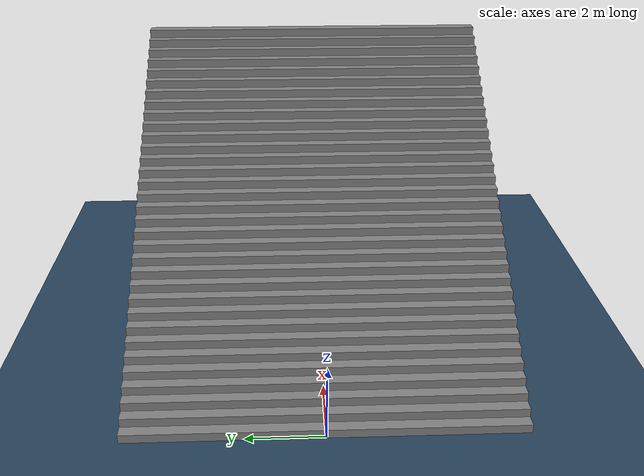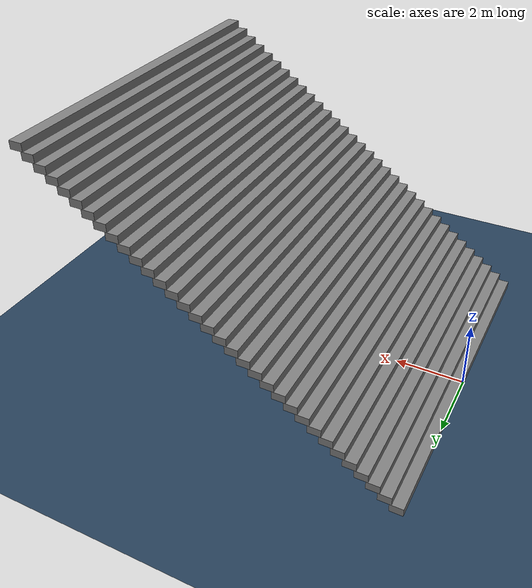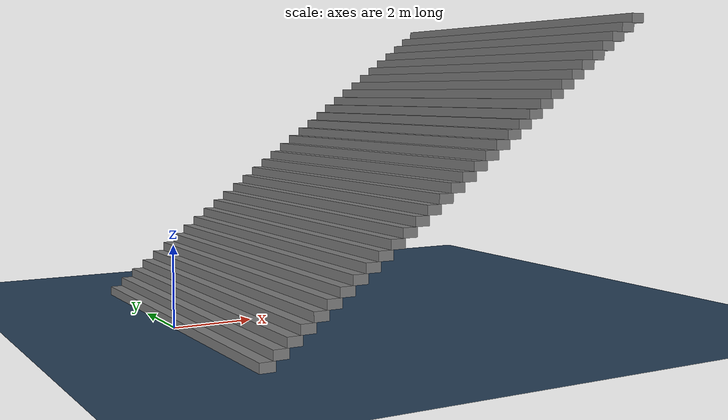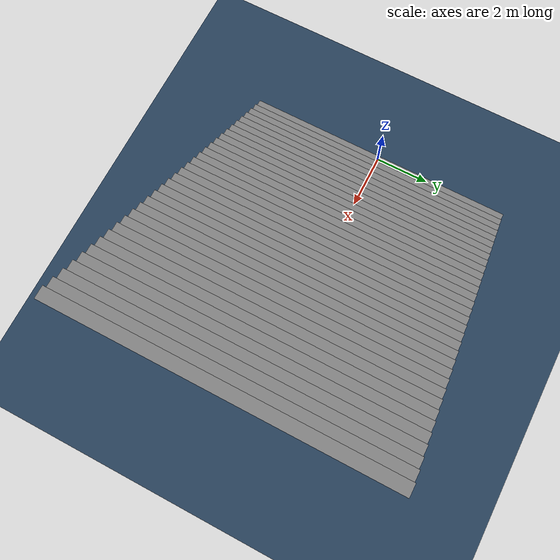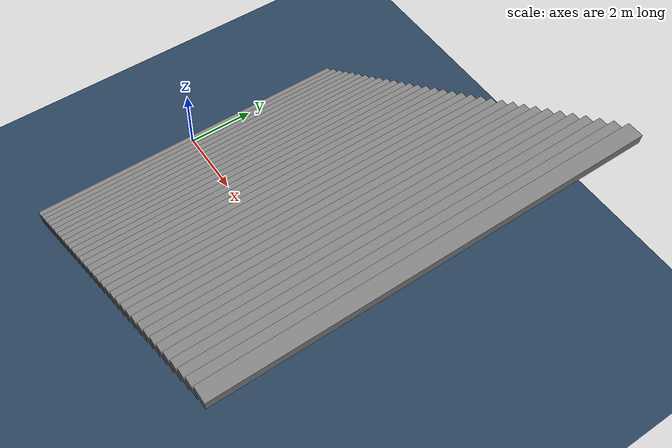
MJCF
<mujoco model="stairs_up_10">
  <!-- Terrain Type: stairs_up, Level: 10, Stairs step height: 0.2300 -->
  <statistic center="0 0 0.1" extent="0.8" />
  <visual>
    <headlight diffuse="0.6 0.6 0.6" ambient="0.3 0.3 0.3" specular="0 0 0" />
    <rgba haze="0.15 0.25 0.35 1" />
    <global azimuth="-130" elevation="-20" />
  </visual>
  <asset>
    <texture type="skybox" builtin="gradient" rgb1="0.3 0.5 0.7" rgb2="0 0 0" width="512" height="3072" />
    <texture type="2d" name="groundplane" builtin="checker" mark="edge" rgb1="0.2 0.3 0.4" rgb2="0.1 0.2 0.3" markrgb="0.8 0.8 0.8" width="300" height="300" />
    <material name="groundplane" texture="groundplane" texuniform="true" texrepeat="5 5" reflectance="0.0" />
  </asset>
  <worldbody>
    <light pos="0 0 1.5" dir="0 0 -1" directional="true" />
    <geom name="floor" size="0 0 0.05" type="plane" material="groundplane" />
    <geom pos="0.155 0.0 0.115" type="box" size="0.186 5.0 0.115" quat="1.0 0.0 0.0 0.0" />
    <geom pos="0.46499999999999997 0.0 0.34500000000000003" type="box" size="0.186 5.0 0.115" quat="1.0 0.0 0.0 0.0" />
    <geom pos="0.7749999999999999 0.0 0.5750000000000001" type="box" size="0.186 5.0 0.115" quat="1.0 0.0 0.0 0.0" />
    <geom pos="1.085 0.0 0.805" type="box" size="0.186 5.0 0.115" quat="1.0 0.0 0.0 0.0" />
    <geom pos="1.395 0.0 1.0350000000000001" type="box" size="0.186 5.0 0.115" quat="1.0 0.0 0.0 0.0" />
    <geom pos="1.705 0.0 1.2650000000000001" type="box" size="0.186 5.0 0.115" quat="1.0 0.0 0.0 0.0" />
    <geom pos="2.015 0.0 1.495" type="box" size="0.186 5.0 0.115" quat="1.0 0.0 0.0 0.0" />
    <geom pos="2.325 0.0 1.725" type="box" size="0.186 5.0 0.115" quat="1.0 0.0 0.0 0.0" />
    <geom pos="2.6350000000000002 0.0 1.955" type="box" size="0.186 5.0 0.115" quat="1.0 0.0 0.0 0.0" />
    <geom pos="2.9450000000000003 0.0 2.185" type="box" size="0.186 5.0 0.115" quat="1.0 0.0 0.0 0.0" />
    <geom pos="3.2550000000000003 0.0 2.415" type="box" size="0.186 5.0 0.115" quat="1.0 0.0 0.0 0.0" />
    <geom pos="3.5650000000000004 0.0 2.645" type="box" size="0.186 5.0 0.115" quat="1.0 0.0 0.0 0.0" />
    <geom pos="3.8750000000000004 0.0 2.875" type="box" size="0.186 5.0 0.115" quat="1.0 0.0 0.0 0.0" />
    <geom pos="4.1850000000000005 0.0 3.105" type="box" size="0.186 5.0 0.115" quat="1.0 0.0 0.0 0.0" />
    <geom pos="4.495 0.0 3.335" type="box" size="0.186 5.0 0.115" quat="1.0 0.0 0.0 0.0" />
    <geom pos="4.805 0.0 3.565" type="box" size="0.186 5.0 0.115" quat="1.0 0.0 0.0 0.0" />
    <geom pos="5.114999999999999 0.0 3.795" type="box" size="0.186 5.0 0.115" quat="1.0 0.0 0.0 0.0" />
    <geom pos="5.424999999999999 0.0 4.025" type="box" size="0.186 5.0 0.115" quat="1.0 0.0 0.0 0.0" />
    <geom pos="5.7349999999999985 0.0 4.255000000000001" type="box" size="0.186 5.0 0.115" quat="1.0 0.0 0.0 0.0" />
    <geom pos="6.044999999999998 0.0 4.485000000000001" type="box" size="0.186 5.0 0.115" quat="1.0 0.0 0.0 0.0" />
    <geom pos="6.354999999999998 0.0 4.715000000000002" type="box" size="0.186 5.0 0.115" quat="1.0 0.0 0.0 0.0" />
    <geom pos="6.664999999999997 0.0 4.945000000000002" type="box" size="0.186 5.0 0.115" quat="1.0 0.0 0.0 0.0" />
    <geom pos="6.974999999999997 0.0 5.1750000000000025" type="box" size="0.186 5.0 0.115" quat="1.0 0.0 0.0 0.0" />
    <geom pos="7.284999999999997 0.0 5.405000000000003" type="box" size="0.186 5.0 0.115" quat="1.0 0.0 0.0 0.0" />
    <geom pos="7.594999999999996 0.0 5.635000000000003" type="box" size="0.186 5.0 0.115" quat="1.0 0.0 0.0 0.0" />
    <geom pos="7.904999999999996 0.0 5.865000000000004" type="box" size="0.186 5.0 0.115" quat="1.0 0.0 0.0 0.0" />
    <geom pos="8.214999999999996 0.0 6.095000000000004" type="box" size="0.186 5.0 0.115" quat="1.0 0.0 0.0 0.0" />
    <geom pos="8.524999999999997 0.0 6.325000000000005" type="box" size="0.186 5.0 0.115" quat="1.0 0.0 0.0 0.0" />
    <geom pos="8.834999999999997 0.0 6.555000000000005" type="box" size="0.186 5.0 0.115" quat="1.0 0.0 0.0 0.0" />
    <geom pos="9.144999999999998 0.0 6.7850000000000055" type="box" size="0.186 5.0 0.115" quat="1.0 0.0 0.0 0.0" />
    <geom pos="9.454999999999998 0.0 7.015000000000006" type="box" size="0.186 5.0 0.115" quat="1.0 0.0 0.0 0.0" />
    <geom pos="9.764999999999999 0.0 7.245000000000006" type="box" size="0.186 5.0 0.115" quat="1.0 0.0 0.0 0.0" />
    <geom pos="10.075 0.0 7.475000000000007" type="box" size="0.186 5.0 0.115" quat="1.0 0.0 0.0 0.0" />
  </worldbody>
</mujoco>
